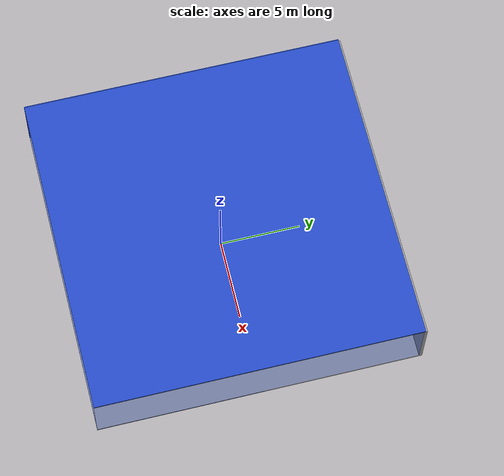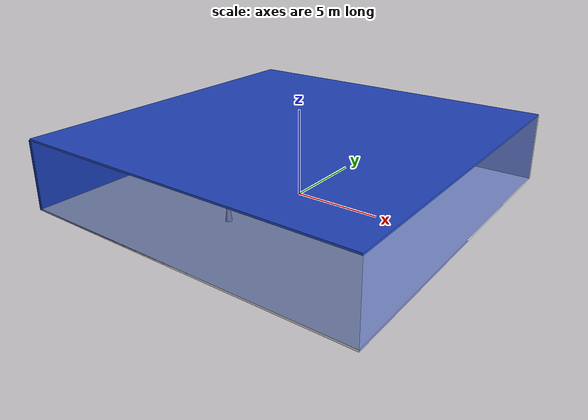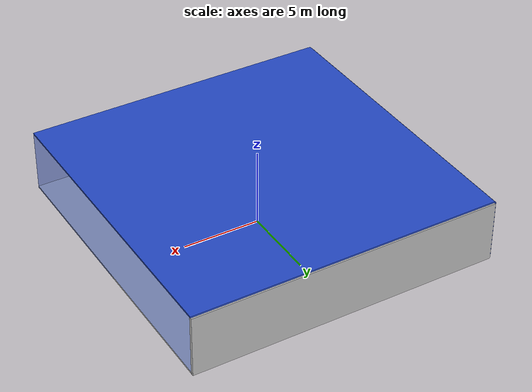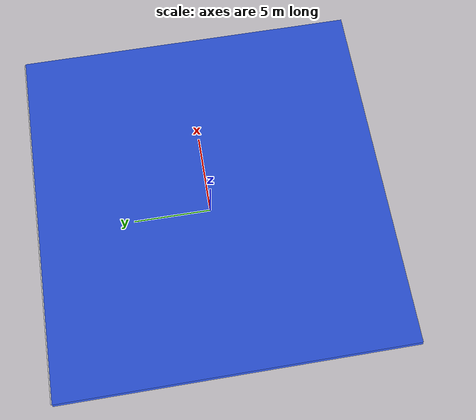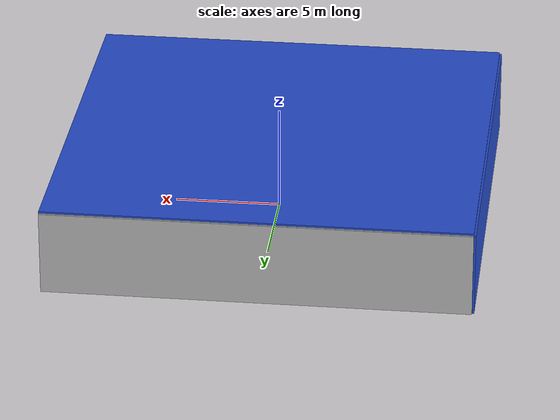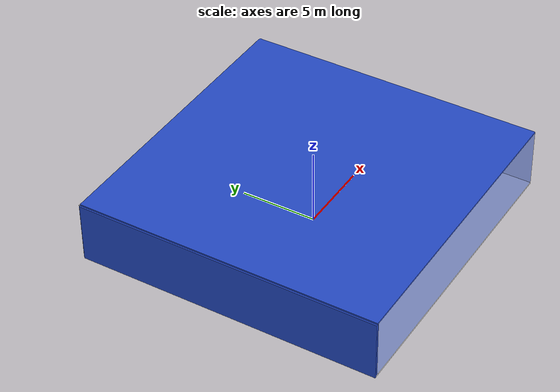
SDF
<sdf version="1.4">
 <world name="default">
  <physics type="ode">
   <max_step_size>0.001</max_step_size>
   <real_time_factor>1</real_time_factor>
   <real_time_update_rate>1000</real_time_update_rate>
   <gravity>0 0 -9.8</gravity>
  </physics>
  <scene><ambient>0.4 0.4 0.4 1</ambient><background>0.7 0.7 0.7 1</background><shadows>1</shadows></scene>
  <model name="Surrounding">
   <static>1</static>
   <link name="Ceiling">
    <collision name="Ceiling_Collision"><geometry><box><size>20 20 0.1</size></box></geometry></collision>
    <visual name="Ceiling_Visual">
     <geometry><box><size>20 20 0.1</size></box></geometry>
     <material>
      <script><uri>file://media/materials/scripts/gazebo.material</uri><name>Gazebo/BlueLaser</name></script>
     </material>
    </visual>
    <pose>0 0 4.05 0 0 0</pose>
   </link>
   <link name="Wall_South">
    <collision name="Wall_South_Collision">
     <geometry><box><size>20 0 4</size></box></geometry>
     <pose>0 0 2 0 -0 0</pose>
    </collision>
    <visual name="Wall_South_Visual">
     <pose>0 0 2 0 -0 0</pose>
     <geometry><box><size>20 0 4</size></box></geometry>
     <material>
      <script><uri>file://media/materials/scripts/gazebo.material</uri><name>Gazebo/BlueTransparent</name></script>
     </material>
    </visual>
    <velocity_decay><linear>0</linear><angular>0</angular></velocity_decay>
    <pose>0 -10 0 0 -0 0</pose>
   </link>
   <link name="Wall_East">
    <collision name="Wall_21_Collision">
     <geometry><box><size>20 0 4</size></box></geometry>
     <pose>0 0 2 0 -0 0</pose>
    </collision>
    <visual name="Wall_21_Visual">
     <pose>0 0 2 0 -0 0</pose>
     <geometry><box><size>20 0 4</size></box></geometry>
     <material>
      <script><uri>file://media/materials/scripts/gazebo.material</uri><name>Gazebo/BlueTransparent</name></script>
     </material>
    </visual>
    <velocity_decay><linear>0</linear><angular>0</angular></velocity_decay>
    <pose>10 0 0 0 -0 1.5708</pose>
   </link>
   <link name="Wall_North">
    <collision name="Wall_22_Collision">
     <geometry><box><size>20 0.2 4</size></box></geometry>
     <pose>0 0 2 0 -0 0</pose>
    </collision>
    <visual name="Wall_22_Visual">
     <pose>0 0 2 0 -0 0</pose>
     <geometry><box><size>20 0.2 4</size></box></geometry>
     <material>
      <script><uri>file://media/materials/scripts/gazebo.material</uri><name>Gazebo/CloudySky</name></script>
     </material>
    </visual>
    <velocity_decay><linear>0</linear><angular>0</angular></velocity_decay>
    <pose>0 10 0 0 -0 0</pose>
   </link>
   <link name="Wall_West">
    <collision name="Wall_23_Collision">
     <geometry><box><size>20 0.2 4</size></box></geometry>
     <pose>0 0 2 0 -0 0</pose>
    </collision>
    <visual name="Wall_23_Visual">
     <pose>0 0 2 0 -0 0</pose>
     <geometry><box><size>20 0.2 4</size></box></geometry>
     <material>
      <script><uri>file://media/materials/scripts/gazebo.material</uri><name>Gazebo/BlueLaser</name></script>
     </material>
    </visual>
    <velocity_decay><linear>0</linear><angular>0</angular></velocity_decay>
    <pose>-10 0 0 0 0 -1.5708</pose>
   </link>
   <link name="Ground_link">
    <collision name="collision">
     <pose>0 0 .05 0 -0 0</pose>
     <geometry><box><size>20 20 0.1</size></box></geometry>
    </collision>
    <visual name="visual">
     <pose>0 0 .05 0 -0 0</pose>
     <geometry><box><size>20 20 0.1</size></box></geometry>
     <material>
      <script><uri>file://media/materials/scripts/gazebo.material</uri><name>Gazebo/White</name></script>
     </material>
    </visual>
   </link>
   <static>1</static>
  </model>
  <spherical_coordinates>
   <surface_model>EARTH_WGS84</surface_model>
   <latitude_deg>0</latitude_deg>
   <longitude_deg>0</longitude_deg>
   <elevation>0</elevation>
   <heading_deg>0</heading_deg>
  </spherical_coordinates>
  <light name="lightball_0" type="diffuse">
   <diffuse>0.8 0.8 0.8 1</diffuse>
   <specular>0.2 0.2 0.2 1</specular>
   <attenuation>
    <range>100</range>
    <constant>0.7</constant>
    <linear>0.01</linear>
    <quadratic>0.001</quadratic>
   </attenuation>
   <direction>-0.5 0.1 -0.9</direction>
   <pose>-2.54741724093 0.356783377549 1.29052350765 0 0 0</pose>
  </light>
  <light name="lightball_1" type="diffuse">
   <diffuse>0.8 0.8 0.8 1</diffuse>
   <specular>0.2 0.2 0.2 1</specular>
   <attenuation>
    <range>100</range>
    <constant>0.7</constant>
    <linear>0.01</linear>
    <quadratic>0.001</quadratic>
   </attenuation>
   <direction>-0.5 0.1 -0.9</direction>
   <pose>4.12168838132 -3.2977402044 1.9653160238 0 0 0</pose>
  </light>
  <light name="lightball_2" type="diffuse">
   <diffuse>0.8 0.8 0.8 1</diffuse>
   <specular>0.2 0.2 0.2 1</specular>
   <attenuation>
    <range>100</range>
    <constant>0.7</constant>
    <linear>0.01</linear>
    <quadratic>0.001</quadratic>
   </attenuation>
   <direction>-0.5 0.1 -0.9</direction>
   <pose>-7.10336955744 7.44778385482 3.11698261546 0 0 0</pose>
  </light>
  <light name="lightball_3" type="diffuse">
   <diffuse>0.8 0.8 0.8 1</diffuse>
   <specular>0.2 0.2 0.2 1</specular>
   <attenuation>
    <range>100</range>
    <constant>0.7</constant>
    <linear>0.01</linear>
    <quadratic>0.001</quadratic>
   </attenuation>
   <direction>-0.5 0.1 -0.9</direction>
   <pose>4.03954913355 -9.26212833287 1.58596691916 0 0 0</pose>
  </light>
  <light name="lightball_4" type="diffuse">
   <diffuse>0.8 0.8 0.8 1</diffuse>
   <specular>0.2 0.2 0.2 1</specular>
   <attenuation>
    <range>100</range>
    <constant>0.7</constant>
    <linear>0.01</linear>
    <quadratic>0.001</quadratic>
   </attenuation>
   <direction>-0.5 0.1 -0.9</direction>
   <pose>-4.40839310995 -0.820386836741 1.81295947858 0 0 0</pose>
  </light>
  <light name="lightball_5" type="diffuse">
   <diffuse>0.8 0.8 0.8 1</diffuse>
   <specular>0.2 0.2 0.2 1</specular>
   <attenuation>
    <range>100</range>
    <constant>0.7</constant>
    <linear>0.01</linear>
    <quadratic>0.001</quadratic>
   </attenuation>
   <direction>-0.5 0.1 -0.9</direction>
   <pose>4.47058319557 -1.0227340726 1.02066102275 0 0 0</pose>
  </light>
  <light name="lightball_6" type="diffuse">
   <diffuse>0.8 0.8 0.8 1</diffuse>
   <specular>0.2 0.2 0.2 1</specular>
   <attenuation>
    <range>100</range>
    <constant>0.7</constant>
    <linear>0.01</linear>
    <quadratic>0.001</quadratic>
   </attenuation>
   <direction>-0.5 0.1 -0.9</direction>
   <pose>-6.56862300312 6.31460050322 3.12763867073 0 0 0</pose>
  </light>
  <light name="lightball_7" type="diffuse">
   <diffuse>0.8 0.8 0.8 1</diffuse>
   <specular>0.2 0.2 0.2 1</specular>
   <attenuation>
    <range>100</range>
    <constant>0.7</constant>
    <linear>0.01</linear>
    <quadratic>0.001</quadratic>
   </attenuation>
   <direction>-0.5 0.1 -0.9</direction>
   <pose>6.26314980052 -6.88494699971 0.650282929308 0 0 0</pose>
  </light>
  <include>
   <uri>model://construction_cone</uri>
   <pose>-7.88624767524 -1.508140931 0 0 0 2.58041270945</pose>
  </include>
  <include><uri>model://table</uri><pose>-5.07171524955 -1.43964944921 0 0 0 0.716484370105</pose></include>
  <include>
   <uri>model://construction_cone</uri>
   <pose>-0.83685824898 -5.04262921355 0 0 0 2.15421590285</pose>
  </include>
  <include>
   <uri>model://robocup_3Dsim_goal</uri>
   <pose>5.28386472806 7.13234504793 0 0 0 2.58552707917</pose>
  </include>
 </world>
</sdf>

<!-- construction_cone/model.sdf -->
<sdf version="1.5">
  <model name="Construction Cone">
    <link name="link">
      <collision name="collision">
        <geometry>
          <mesh>
            <scale>10 10 10</scale>
            <uri>file://isr-testbed/construction_cone/meshes/construction_cone.dae</uri>
          </mesh>
        </geometry>
      </collision>
      <visual name="visual">
        <geometry>
          <mesh>
            <scale>10 10 10</scale>
            <uri>file://isr-testbed/construction_cone/meshes/construction_cone.dae</uri>
          </mesh>
        </geometry>
      </visual>
    </link>
  </model>
</sdf>

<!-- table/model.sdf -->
<sdf version="1.5">
  <model name="table">
    <static>true</static>
    <link name="link">
      <collision name="surface">
        <pose>0 0 1.0 0 0 0</pose>
        <geometry>
          <box>
            <size>1.5 0.8 0.03</size>
          </box>
        </geometry>
        <surface>
          <friction>
            <ode>
              <mu>0.6</mu>
              <mu2>0.6</mu2>
            </ode>
          </friction>
        </surface>
      </collision>
      <visual name="visual1">
        <pose>0 0 1.0 0 0 0</pose>
        <geometry>
          <box>
            <size>1.5 0.8 0.03</size>
          </box>
        </geometry>
        <material>
          <script>
            <uri>model://media/materials/scripts/gazebo.material</uri>
            <name>Gazebo/Wood</name>
          </script>
        </material>
      </visual>
      <collision name="front_left_leg">
        <pose>0.68 0.38 0.5 0 0 0</pose>
        <geometry>
          <cylinder>
            <radius>0.02</radius>
            <length>1.0</length>
          </cylinder>
        </geometry>
      </collision>
      <visual name="front_left_leg">
        <pose>0.68 0.38 0.5 0 0 0</pose>
        <geometry>
          <cylinder>
            <radius>0.02</radius>
            <length>1.0</length>
          </cylinder>
        </geometry>
        <material>
          <script>
            <uri>model://media/materials/scripts/gazebo.material</uri>
            <name>Gazebo/Grey</name>
          </script>
        </material>
      </visual>
      <collision name="front_right_leg">
        <pose>0.68 -0.38 0.5 0 0 0</pose>
        <geometry>
          <cylinder>
            <radius>0.02</radius>
            <length>1.0</length>
          </cylinder>
        </geometry>
      </collision>
      <visual name="front_right_leg">
        <pose>0.68 -0.38 0.5 0 0 0</pose>
        <geometry>
          <cylinder>
            <radius>0.02</radius>
            <length>1.0</length>
          </cylinder>
        </geometry>
        <material>
          <script>
            <uri>model://media/materials/scripts/gazebo.material</uri>
            <name>Gazebo/Grey</name>
          </script>
        </material>
      </visual>
      <collision name="back_right_leg">
        <pose>-0.68 -0.38 0.5 0 0 0</pose>
        <geometry>
          <cylinder>
            <radius>0.02</radius>
            <length>1.0</length>
          </cylinder>
        </geometry>
      </collision>
      <visual name="back_right_leg">
        <pose>-0.68 -0.38 0.5 0 0 0</pose>
        <geometry>
          <cylinder>
            <radius>0.02</radius>
            <length>1.0</length>
          </cylinder>
        </geometry>
        <material>
          <script>
            <uri>model://media/materials/scripts/gazebo.material</uri>
            <name>Gazebo/Grey</name>
          </script>
        </material>
      </visual>
      <collision name="back_left_leg">
        <pose>-0.68 0.38 0.5 0 0 0</pose>
        <geometry>
          <cylinder>
            <radius>0.02</radius>
            <length>1.0</length>
          </cylinder>
        </geometry>
      </collision>
      <visual name="back_left_leg">
        <pose>-0.68 0.38 0.5 0 0 0</pose>
        <geometry>
          <cylinder>
            <radius>0.02</radius>
            <length>1.0</length>
          </cylinder>
        </geometry>
        <material>
          <script>
            <uri>model://media/materials/scripts/gazebo.material</uri>
            <name>Gazebo/Grey</name>
          </script>
        </material>
      </visual>
    </link>
  </model>
</sdf>

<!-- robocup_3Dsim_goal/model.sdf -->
<sdf version="1.5">
  <model name="robocup_3d_goal">
    <static>true</static>
    <link name="left_post">
      <pose>0 1.05 0.45 0 0 0</pose>
      <collision name="collision">
        <geometry>
          <cylinder>
            <radius>0.05</radius>
            <length>0.9</length>
          </cylinder>
        </geometry>
      </collision>
      <visual name="visual">
        <geometry>
          <cylinder>
            <radius>0.05</radius>
            <length>0.9</length>
          </cylinder>
        </geometry>
        <material>
          <script>
            <uri>file://media/materials/scripts/gazebo.material</uri>
            <name>Gazebo/ZincYellow</name>
          </script>
        </material>
      </visual>
    </link>
    <link name="left_support_horiz_lower">
      <pose>0.30 1.05 0.01 0 0 0</pose>
      <collision name="collision">
        <geometry>
          <box>
            <size>0.50 0.02 0.02</size>
          </box>
        </geometry>
      </collision>
      <visual name="visual">
        <geometry>
          <box>
            <size>0.50 0.02 0.02</size>
          </box>
        </geometry>
        <material>
          <script>
            <uri>file://media/materials/scripts/gazebo.material</uri>
            <name>Gazebo/White</name>
          </script>
        </material>
      </visual>
    </link>
    <link name="left_support_horiz_upper">
      <pose>0.30 1.05 0.79 0 0 0</pose>
      <collision name="collision">
        <geometry>
          <box>
            <size>0.50 0.02 0.02</size>
          </box>
        </geometry>
      </collision>
      <visual name="visual">
        <geometry>
          <box>
            <size>0.50 0.02 0.02</size>
          </box>
        </geometry>
        <material>
          <script>
            <uri>file://media/materials/scripts/gazebo.material</uri>
            <name>Gazebo/White</name>
          </script>
        </material>
      </visual>
    </link>
    <link name="left_support_vertical">
      <pose>0.56 1.05 0.4 0 1.5708 0</pose>
      <collision name="collision">
        <geometry>
          <box>
            <size>0.80 0.02 0.02</size>
          </box>
        </geometry>
      </collision>
      <visual name="visual">
        <geometry>
          <box>
            <size>0.80 0.02 0.02</size>
          </box>
        </geometry>
        <material>
          <script>
            <uri>file://media/materials/scripts/gazebo.material</uri>
            <name>Gazebo/White</name>
          </script>
        </material>
      </visual>
    </link>
    <link name="right_support_horiz_lower">
      <pose>0.30 -1.05 0.01 0 0 0</pose>
      <collision name="collision">
        <geometry>
          <box>
            <size>0.50 0.02 0.02</size>
          </box>
        </geometry>
      </collision>
      <visual name="visual">
        <geometry>
          <box>
            <size>0.50 0.02 0.02</size>
          </box>
        </geometry>
        <material>
          <script>
            <uri>file://media/materials/scripts/gazebo.material</uri>
            <name>Gazebo/White</name>
          </script>
        </material>
      </visual>
    </link>
    <link name="right_support_horiz_upper">
      <pose>0.30 -1.05 0.79 0 0 0</pose>
      <collision name="collision">
        <geometry>
          <box>
            <size>0.50 0.02 0.02</size>
          </box>
        </geometry>
      </collision>
      <visual name="visual">
        <geometry>
          <box>
            <size>0.50 0.02 0.02</size>
          </box>
        </geometry>
        <material>
          <script>
            <uri>file://media/materials/scripts/gazebo.material</uri>
            <name>Gazebo/White</name>
          </script>
        </material>
      </visual>
    </link>
    <link name="right_support_vertical">
      <pose>0.56 -1.05 0.4 0 1.5708 0</pose>
      <collision name="collision">
        <geometry>
          <box>
            <size>0.80 0.02 0.02</size>
          </box>
        </geometry>
      </collision>
      <visual name="visual">
        <geometry>
          <box>
            <size>0.80 0.02 0.02</size>
          </box>
        </geometry>
        <material>
          <script>
            <uri>file://media/materials/scripts/gazebo.material</uri>
            <name>Gazebo/White</name>
          </script>
        </material>
      </visual>
    </link>
    <link name="center_support_horiz_lower">
      <pose>0.56 0 0.01 0 1.5708 0</pose>
      <collision name="collision">
        <geometry>
          <box>
            <size>0.02 2.08 0.02</size>
          </box>
        </geometry>
      </collision>
      <visual name="visual">
        <geometry>
          <box>
            <size>0.02 2.08 0.02</size>
          </box>
        </geometry>
        <material>
          <script>
            <uri>file://media/materials/scripts/gazebo.material</uri>
            <name>Gazebo/White</name>
          </script>
        </material>
      </visual>
    </link>
    <link name="center_support_horiz_upper">
      <pose>0.56 0 0.79 0 1.5708 0</pose>
      <collision name="collision">
        <geometry>
          <box>
            <size>0.02 2.08 0.02</size>
          </box>
        </geometry>
      </collision>
      <visual name="visual">
        <geometry>
          <box>
            <size>0.02 2.08 0.02</size>
          </box>
        </geometry>
        <material>
          <script>
            <uri>file://media/materials/scripts/gazebo.material</uri>
            <name>Gazebo/White</name>
          </script>
        </material>
      </visual>
    </link>
    <link name="right_post">
      <pose>0 -1.05 0.45 0 0 0</pose>
      <collision name="collision">
        <geometry>
          <cylinder>
            <radius>0.05</radius>
            <length>0.9</length>
          </cylinder>
        </geometry>
      </collision>
      <visual name="visual">
        <geometry>
          <cylinder>
            <radius>0.05</radius>
            <length>0.9</length>
          </cylinder>
        </geometry>
        <material>
          <script>
            <uri>file://media/materials/scripts/gazebo.material</uri>
            <name>Gazebo/ZincYellow</name>
          </script>
        </material>
      </visual>
    </link>
    <link name="crossbar">
      <pose>0 0 0.85 1.57 1.57 0</pose>
      <collision name="collision">
        <geometry>
          <cylinder>
            <radius>0.05</radius>
            <length>2.0</length>
          </cylinder>
        </geometry>
      </collision>
      <visual name="visual">
        <geometry>
          <cylinder>
            <radius>0.05</radius>
            <length>2.0</length>
          </cylinder>
        </geometry>
        <material>
          <script>
            <uri>file://media/materials/scripts/gazebo.material</uri>
            <name>Gazebo/ZincYellow</name>
          </script>
        </material>
      </visual>
    </link>
    <link name="center_net">
      <pose>0.56 0 0.40 0 0 0</pose>
      <collision name="collision">
        <geometry>
          <box>
            <size>0.01 2.1 0.80</size>
          </box>
        </geometry>
      </collision>
      <visual name="visual">
        <geometry>
          <box>
            <size>0.01 2.1 0.80</size>
          </box>
        </geometry>
        <material>
          <script>
            <uri>model://../model_source/models/robocup09_spl_field/materials/scripts/</uri>
            <uri>model://../model_source/models/robocup09_spl_field/materials/textures/</uri>
            <name>RoboCup/Net</name>
          </script>
        </material>
      </visual>
    </link>
    <link name="left_net">
      <pose>0.30 1.05 0.40 0 0 0</pose>
      <collision name="collision">
        <geometry>
          <box>
            <size>0.50 0.01 0.76</size>
          </box>
        </geometry>
      </collision>
      <visual name="visual">
        <geometry>
          <box>
            <size>0.50 0.01 0.76</size>
          </box>
        </geometry>
        <material>
          <script>
            <uri>model://../model_source/models/robocup09_spl_field/materials/scripts/</uri>
            <uri>model://../model_source/models/robocup09_spl_field/materials/textures/</uri>
            <name>RoboCup/Net</name>
          </script>
        </material>
      </visual>
    </link>
    <link name="right_net">
      <pose>0.30 -1.05 0.40 0 0 0</pose>
      <collision name="collision">
        <geometry>
          <box>
            <size>0.50 0.01 0.76</size>
          </box>
        </geometry>
      </collision>
      <visual name="visual">
        <geometry>
          <box>
            <size>0.50 0.01 0.76</size>
          </box>
        </geometry>
        <material>
          <script>
            <uri>model://../model_source/models/robocup09_spl_field/materials/scripts/</uri>
            <uri>model://../model_source/models/robocup09_spl_field/materials/textures/</uri>
            <name>RoboCup/Net</name>
          </script>
        </material>
      </visual>
    </link>
  </model>
</sdf>
